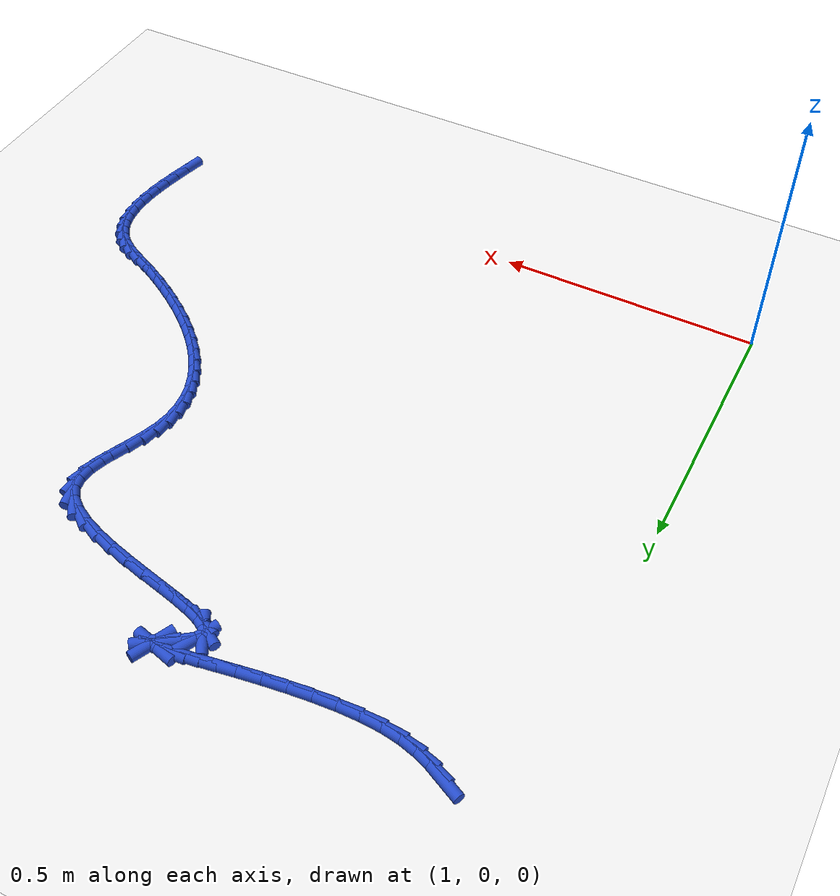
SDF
<sdf version="1.6">
 <world name="default">
  <model name="ground_plane">
   <static>1</static>
   <link name="link">
    <collision name="collision">
     <geometry><plane><normal>0 0 1</normal><size>100 100</size></plane></geometry>
     <surface><friction><ode><mu>100</mu><mu2>50</mu2></ode></friction></surface>
    </collision>
    <visual name="visual">
     <cast_shadows>0</cast_shadows>
     <geometry><plane><normal>0 0 1</normal><size>100 100</size></plane></geometry>
     <material>
      <script><uri>file://media/materials/scripts/gazebo.material</uri><name>Gazebo/WhiteGlow</name></script>
     </material>
    </visual>
   </link>
  </model>
  <model name="line">
   <link name="link_76">
    <pose>1.119557939221141 1.0573060008695208 0.01 0 1.57 -0.4448276325542376</pose>
    <collision name="collision">
     <geometry><cylinder><radius>0.01</radius><length>0.08</length></cylinder></geometry>
    </collision>
    <visual name="visual">
     <material>
      <script><name>Gazebo/Blue</name><uri>file://media/materials/scripts/gazebo.material</uri></script>
     </material>
     <geometry><cylinder><radius>0.01</radius><length>0.08</length></cylinder></geometry>
    </visual>
   </link>
   <link name="link_77">
    <pose>1.1432711441224492 1.0460021150662575 0.01 0 1.57 -0.3547478070886102</pose>
    <collision name="collision">
     <geometry><cylinder><radius>0.01</radius><length>0.08</length></cylinder></geometry>
    </collision>
    <visual name="visual">
     <material>
      <script><name>Gazebo/Blue</name><uri>file://media/materials/scripts/gazebo.material</uri></script>
     </material>
     <geometry><cylinder><radius>0.01</radius><length>0.08</length></cylinder></geometry>
    </visual>
   </link>
   <link name="link_78">
    <pose>1.1694569294703592 1.03630242074345 0.01 0 1.57 -0.2484566530718259</pose>
    <collision name="collision">
     <geometry><cylinder><radius>0.01</radius><length>0.08</length></cylinder></geometry>
    </collision>
    <visual name="visual">
     <material>
      <script><name>Gazebo/Blue</name><uri>file://media/materials/scripts/gazebo.material</uri></script>
     </material>
     <geometry><cylinder><radius>0.01</radius><length>0.08</length></cylinder></geometry>
    </visual>
   </link>
   <link name="link_79">
    <pose>1.1987830521137246 1.0288624246276619 0.01 0 1.57 -0.13606380426584513</pose>
    <collision name="collision">
     <geometry><cylinder><radius>0.01</radius><length>0.08</length></cylinder></geometry>
    </collision>
    <visual name="visual">
     <material>
      <script><name>Gazebo/Blue</name><uri>file://media/materials/scripts/gazebo.material</uri></script>
     </material>
     <geometry><cylinder><radius>0.01</radius><length>0.08</length></cylinder></geometry>
    </visual>
   </link>
   <link name="link_80">
    <pose>1.2319029323683126 1.0243279905908655 0.01 0 1.57 -0.03921163434594837</pose>
    <collision name="collision">
     <geometry><cylinder><radius>0.01</radius><length>0.08</length></cylinder></geometry>
    </collision>
    <visual name="visual">
     <material>
      <script><name>Gazebo/Blue</name><uri>file://media/materials/scripts/gazebo.material</uri></script>
     </material>
     <geometry><cylinder><radius>0.01</radius><length>0.08</length></cylinder></geometry>
    </visual>
   </link>
   <link name="link_81">
    <pose>1.2687804902889022 1.022881219702808 0.01 0 1.57 0.029356387651383205</pose>
    <collision name="collision">
     <geometry><cylinder><radius>0.01</radius><length>0.08</length></cylinder></geometry>
    </collision>
    <visual name="visual">
     <material>
      <script><name>Gazebo/Blue</name><uri>file://media/materials/scripts/gazebo.material</uri></script>
     </material>
     <geometry><cylinder><radius>0.01</radius><length>0.08</length></cylinder></geometry>
    </visual>
   </link>
   <link name="link_82">
    <pose>1.308398979292533 1.0240446096455431 0.01 0 1.57 0.07848825222287074</pose>
    <collision name="collision">
     <geometry><cylinder><radius>0.01</radius><length>0.08</length></cylinder></geometry>
    </collision>
    <visual name="visual">
     <material>
      <script><name>Gazebo/Blue</name><uri>file://media/materials/scripts/gazebo.material</uri></script>
     </material>
     <geometry><cylinder><radius>0.01</radius><length>0.08</length></cylinder></geometry>
    </visual>
   </link>
   <link name="link_83">
    <pose>1.349666808226554 1.0272903171087626 0.01 0 1.57 0.11426672199309747</pose>
    <collision name="collision">
     <geometry><cylinder><radius>0.01</radius><length>0.08</length></cylinder></geometry>
    </collision>
    <visual name="visual">
     <material>
      <script><name>Gazebo/Blue</name><uri>file://media/materials/scripts/gazebo.material</uri></script>
     </material>
     <geometry><cylinder><radius>0.01</radius><length>0.08</length></cylinder></geometry>
    </visual>
   </link>
   <link name="link_84">
    <pose>1.3914923859383148 1.0320904987821584 0.01 0 1.57 0.14018766195337773</pose>
    <collision name="collision">
     <geometry><cylinder><radius>0.01</radius><length>0.08</length></cylinder></geometry>
    </collision>
    <visual name="visual">
     <material>
      <script><name>Gazebo/Blue</name><uri>file://media/materials/scripts/gazebo.material</uri></script>
     </material>
     <geometry><cylinder><radius>0.01</radius><length>0.08</length></cylinder></geometry>
    </visual>
   </link>
   <link name="link_85">
    <pose>1.4327841212751626 1.0379173113554228 0.01 0 1.57 0.15813881793317555</pose>
    <collision name="collision">
     <geometry><cylinder><radius>0.01</radius><length>0.08</length></cylinder></geometry>
    </collision>
    <visual name="visual">
     <material>
      <script><name>Gazebo/Blue</name><uri>file://media/materials/scripts/gazebo.material</uri></script>
     </material>
     <geometry><cylinder><radius>0.01</radius><length>0.08</length></cylinder></geometry>
    </visual>
   </link>
   <link name="link_86">
    <pose>1.4724504230844488 1.0442429115182483 0.01 0 1.57 0.16878909068586265</pose>
    <collision name="collision">
     <geometry><cylinder><radius>0.01</radius><length>0.08</length></cylinder></geometry>
    </collision>
    <visual name="visual">
     <material>
      <script><name>Gazebo/Blue</name><uri>file://media/materials/scripts/gazebo.material</uri></script>
     </material>
     <geometry><cylinder><radius>0.01</radius><length>0.08</length></cylinder></geometry>
    </visual>
   </link>
   <link name="link_87">
    <pose>1.5093997002135218 1.0505394559603274 0.01 0 1.57 0.171489330829459</pose>
    <collision name="collision">
     <geometry><cylinder><radius>0.01</radius><length>0.08</length></cylinder></geometry>
    </collision>
    <visual name="visual">
     <material>
      <script><name>Gazebo/Blue</name><uri>file://media/materials/scripts/gazebo.material</uri></script>
     </material>
     <geometry><cylinder><radius>0.01</radius><length>0.08</length></cylinder></geometry>
    </visual>
   </link>
   <link name="link_88">
    <pose>1.5425403615097304 1.0562791013713517 0.01 0 1.57 0.1633621191271412</pose>
    <collision name="collision">
     <geometry><cylinder><radius>0.01</radius><length>0.08</length></cylinder></geometry>
    </collision>
    <visual name="visual">
     <material>
      <script><name>Gazebo/Blue</name><uri>file://media/materials/scripts/gazebo.material</uri></script>
     </material>
     <geometry><cylinder><radius>0.01</radius><length>0.08</length></cylinder></geometry>
    </visual>
   </link>
   <link name="link_89">
    <pose>1.5707808158204228 1.0609340044410132 0.01 0 1.57 0.13589878426018437</pose>
    <collision name="collision">
     <geometry><cylinder><radius>0.01</radius><length>0.08</length></cylinder></geometry>
    </collision>
    <visual name="visual">
     <material>
      <script><name>Gazebo/Blue</name><uri>file://media/materials/scripts/gazebo.material</uri></script>
     </material>
     <geometry><cylinder><radius>0.01</radius><length>0.08</length></cylinder></geometry>
    </visual>
   </link>
   <link name="link_90">
    <pose>1.5930294719929494 1.0639763218590046 0.01 0 1.57 0.05940069894064432</pose>
    <collision name="collision">
     <geometry><cylinder><radius>0.01</radius><length>0.08</length></cylinder></geometry>
    </collision>
    <visual name="visual">
     <material>
      <script><name>Gazebo/Blue</name><uri>file://media/materials/scripts/gazebo.material</uri></script>
     </material>
     <geometry><cylinder><radius>0.01</radius><length>0.08</length></cylinder></geometry>
    </visual>
   </link>
   <link name="link_91">
    <pose>1.6081947388746585 1.0648782103150176 0.01 0 1.57 -0.24750994195238243</pose>
    <collision name="collision">
     <geometry><cylinder><radius>0.01</radius><length>0.08</length></cylinder></geometry>
    </collision>
    <visual name="visual">
     <material>
      <script><name>Gazebo/Blue</name><uri>file://media/materials/scripts/gazebo.material</uri></script>
     </material>
     <geometry><cylinder><radius>0.01</radius><length>0.08</length></cylinder></geometry>
    </visual>
   </link>
   <link name="link_92">
    <pose>1.615185025312899 1.0631118264987451 0.01 0 1.57 1.1407332938185077</pose>
    <collision name="collision">
     <geometry><cylinder><radius>0.01</radius><length>0.08</length></cylinder></geometry>
    </collision>
    <visual name="visual">
     <material>
      <script><name>Gazebo/Blue</name><uri>file://media/materials/scripts/gazebo.material</uri></script>
     </material>
     <geometry><cylinder><radius>0.01</radius><length>0.08</length></cylinder></geometry>
    </visual>
   </link>
   <link name="link_93">
    <pose>1.6129087401550204 1.058149327099879 0.01 0 1.57 0.6023021451355605</pose>
    <collision name="collision">
     <geometry><cylinder><radius>0.01</radius><length>0.08</length></cylinder></geometry>
    </collision>
    <visual name="visual">
     <material>
      <script><name>Gazebo/Blue</name><uri>file://media/materials/scripts/gazebo.material</uri></script>
     </material>
     <geometry><cylinder><radius>0.01</radius><length>0.08</length></cylinder></geometry>
    </visual>
   </link>
   <link name="link_94">
    <pose>1.6002742922483717 1.0494628688081111 0.01 0 1.57 0.5112422622912883</pose>
    <collision name="collision">
     <geometry><cylinder><radius>0.01</radius><length>0.08</length></cylinder></geometry>
    </collision>
    <visual name="visual">
     <material>
      <script><name>Gazebo/Blue</name><uri>file://media/materials/scripts/gazebo.material</uri></script>
     </material>
     <geometry><cylinder><radius>0.01</radius><length>0.08</length></cylinder></geometry>
    </visual>
   </link>
   <link name="link_95">
    <pose>1.578068344345981 1.0370055364498645 0.01 0 1.57 0.6259605690090069</pose>
    <collision name="collision">
     <geometry><cylinder><radius>0.01</radius><length>0.08</length></cylinder></geometry>
    </collision>
    <visual name="visual">
     <material>
      <script><name>Gazebo/Blue</name><uri>file://media/materials/scripts/gazebo.material</uri></script>
     </material>
     <geometry><cylinder><radius>0.01</radius><length>0.08</length></cylinder></geometry>
    </visual>
   </link>
   <link name="link_96">
    <pose>1.5602315769598556 1.024110516141145 0.01 0 1.57 1.12702797504009</pose>
    <collision name="collision">
     <geometry><cylinder><radius>0.01</radius><length>0.08</length></cylinder></geometry>
    </collision>
    <visual name="visual">
     <material>
      <script><name>Gazebo/Blue</name><uri>file://media/materials/scripts/gazebo.material</uri></script>
     </material>
     <geometry><cylinder><radius>0.01</radius><length>0.08</length></cylinder></geometry>
    </visual>
   </link>
   <link name="link_97">
    <pose>1.5548529517734082 1.0127964384196382 0.01 0 1.57 -1.0506963284716646</pose>
    <collision name="collision">
     <geometry><cylinder><radius>0.01</radius><length>0.08</length></cylinder></geometry>
    </collision>
    <visual name="visual">
     <material>
      <script><name>Gazebo/Blue</name><uri>file://media/materials/scripts/gazebo.material</uri></script>
     </material>
     <geometry><cylinder><radius>0.01</radius><length>0.08</length></cylinder></geometry>
    </visual>
   </link>
   <link name="link_98">
    <pose>1.5605741035795373 1.002806556163056 0.01 0 1.57 -0.53347241656954</pose>
    <collision name="collision">
     <geometry><cylinder><radius>0.01</radius><length>0.08</length></cylinder></geometry>
    </collision>
    <visual name="visual">
     <material>
      <script><name>Gazebo/Blue</name><uri>file://media/materials/scripts/gazebo.material</uri></script>
     </material>
     <geometry><cylinder><radius>0.01</radius><length>0.08</length></cylinder></geometry>
    </visual>
   </link>
   <link name="link_99">
    <pose>1.5757845679919935 0.9938233922622395 0.01 0 1.57 -0.3448564510213312</pose>
    <collision name="collision">
     <geometry><cylinder><radius>0.01</radius><length>0.08</length></cylinder></geometry>
    </collision>
    <visual name="visual">
     <material>
      <script><name>Gazebo/Blue</name><uri>file://media/materials/scripts/gazebo.material</uri></script>
     </material>
     <geometry><cylinder><radius>0.01</radius><length>0.08</length></cylinder></geometry>
    </visual>
   </link>
   <link name="link_100">
    <pose>1.5988738806245244 0.9855294696080285 0.01 0 1.57 -0.2635715171581678</pose>
    <collision name="collision">
     <geometry><cylinder><radius>0.01</radius><length>0.08</length></cylinder></geometry>
    </collision>
    <visual name="visual">
     <material>
      <script><name>Gazebo/Blue</name><uri>file://media/materials/scripts/gazebo.material</uri></script>
     </material>
     <geometry><cylinder><radius>0.01</radius><length>0.08</length></cylinder></geometry>
    </visual>
   </link>
   <link name="link_101">
    <pose>1.6282315770908804 0.977607311091264 0.01 0 1.57 -0.22730438313556744</pose>
    <collision name="collision">
     <geometry><cylinder><radius>0.01</radius><length>0.08</length></cylinder></geometry>
    </collision>
    <visual name="visual">
     <material>
      <script><name>Gazebo/Blue</name><uri>file://media/materials/scripts/gazebo.material</uri></script>
     </material>
     <geometry><cylinder><radius>0.01</radius><length>0.08</length></cylinder></geometry>
    </visual>
   </link>
   <link name="link_102">
    <pose>1.6622471930048102 0.9697394396027855 0.01 0 1.57 -0.21596309971902802</pose>
    <collision name="collision">
     <geometry><cylinder><radius>0.01</radius><length>0.08</length></cylinder></geometry>
    </collision>
    <visual name="visual">
     <material>
      <script><name>Gazebo/Blue</name><uri>file://media/materials/scripts/gazebo.material</uri></script>
     </material>
     <geometry><cylinder><radius>0.01</radius><length>0.08</length></cylinder></geometry>
    </visual>
   </link>
   <link name="link_103">
    <pose>1.699310263980063 0.9616083780334334 0.01 0 1.57 -0.22253081950443354</pose>
    <collision name="collision">
     <geometry><cylinder><radius>0.01</radius><length>0.08</length></cylinder></geometry>
    </collision>
    <visual name="visual">
     <material>
      <script><name>Gazebo/Blue</name><uri>file://media/materials/scripts/gazebo.material</uri></script>
     </material>
     <geometry><cylinder><radius>0.01</radius><length>0.08</length></cylinder></geometry>
    </visual>
   </link>
   <link name="link_104">
    <pose>1.7378103256303883 0.952896649274049 0.01 0 1.57 -0.24567168358701957</pose>
    <collision name="collision">
     <geometry><cylinder><radius>0.01</radius><length>0.08</length></cylinder></geometry>
    </collision>
    <visual name="visual">
     <material>
      <script><name>Gazebo/Blue</name><uri>file://media/materials/scripts/gazebo.material</uri></script>
     </material>
     <geometry><cylinder><radius>0.01</radius><length>0.08</length></cylinder></geometry>
    </visual>
   </link>
   <link name="link_105">
    <pose>1.7761369135695342 0.9432867762154717 0.01 0 1.57 -0.28800620609494315</pose>
    <collision name="collision">
     <geometry><cylinder><radius>0.01</radius><length>0.08</length></cylinder></geometry>
    </collision>
    <visual name="visual">
     <material>
      <script><name>Gazebo/Blue</name><uri>file://media/materials/scripts/gazebo.material</uri></script>
     </material>
     <geometry><cylinder><radius>0.01</radius><length>0.08</length></cylinder></geometry>
    </visual>
   </link>
   <link name="link_106">
    <pose>1.8126795634112502 0.932461281748542 0.01 0 1.57 -0.35686504547201786</pose>
    <collision name="collision">
     <geometry><cylinder><radius>0.01</radius><length>0.08</length></cylinder></geometry>
    </collision>
    <visual name="visual">
     <material>
      <script><name>Gazebo/Blue</name><uri>file://media/materials/scripts/gazebo.material</uri></script>
     </material>
     <geometry><cylinder><radius>0.01</radius><length>0.08</length></cylinder></geometry>
    </visual>
   </link>
   <link name="link_107">
    <pose>1.8458278107692867 0.9201026887641008 0.01 0 1.57 -0.4675479099328642</pose>
    <collision name="collision">
     <geometry><cylinder><radius>0.01</radius><length>0.08</length></cylinder></geometry>
    </collision>
    <visual name="visual">
     <material>
      <script><name>Gazebo/Blue</name><uri>file://media/materials/scripts/gazebo.material</uri></script>
     </material>
     <geometry><cylinder><radius>0.01</radius><length>0.08</length></cylinder></geometry>
    </visual>
   </link>
   <link name="link_108">
    <pose>1.8739711912573898 0.9058935201529879 0.01 0 1.57 -0.6503385598585086</pose>
    <collision name="collision">
     <geometry><cylinder><radius>0.01</radius><length>0.08</length></cylinder></geometry>
    </collision>
    <visual name="visual">
     <material>
      <script><name>Gazebo/Blue</name><uri>file://media/materials/scripts/gazebo.material</uri></script>
     </material>
     <geometry><cylinder><radius>0.01</radius><length>0.08</length></cylinder></geometry>
    </visual>
   </link>
   <link name="link_109">
    <pose>1.8954992404893116 0.8895162988060434 0.01 0 1.57 -0.9557627194883163</pose>
    <collision name="collision">
     <geometry><cylinder><radius>0.01</radius><length>0.08</length></cylinder></geometry>
    </collision>
    <visual name="visual">
     <material>
      <script><name>Gazebo/Blue</name><uri>file://media/materials/scripts/gazebo.material</uri></script>
     </material>
     <geometry><cylinder><radius>0.01</radius><length>0.08</length></cylinder></geometry>
    </visual>
   </link>
   <link name="link_110">
    <pose>1.9088214632244878 0.8706579902914012 0.01 0 1.57 -1.3505530170095883</pose>
    <collision name="collision">
     <geometry><cylinder><radius>0.01</radius><length>0.08</length></cylinder></geometry>
    </collision>
    <visual name="visual">
     <material>
      <script><name>Gazebo/Blue</name><uri>file://media/materials/scripts/gazebo.material</uri></script>
     </material>
     <geometry><cylinder><radius>0.01</radius><length>0.08</length></cylinder></geometry>
    </visual>
   </link>
   <link name="link_111">
    <pose>1.913606200220681 0.8492856223387311 0.01 0 1.57 1.4816917842678161</pose>
    <collision name="collision">
     <geometry><cylinder><radius>0.01</radius><length>0.08</length></cylinder></geometry>
    </collision>
    <visual name="visual">
     <material>
      <script><name>Gazebo/Blue</name><uri>file://media/materials/scripts/gazebo.material</uri></script>
     </material>
     <geometry><cylinder><radius>0.01</radius><length>0.08</length></cylinder></geometry>
    </visual>
   </link>
   <link name="link_112">
    <pose>1.9115087070572958 0.8258082656924232 0.01 0 1.57 1.293671328081895</pose>
    <collision name="collision">
     <geometry><cylinder><radius>0.01</radius><length>0.08</length></cylinder></geometry>
    </collision>
    <visual name="visual">
     <material>
      <script><name>Gazebo/Blue</name><uri>file://media/materials/scripts/gazebo.material</uri></script>
     </material>
     <geometry><cylinder><radius>0.01</radius><length>0.08</length></cylinder></geometry>
    </visual>
   </link>
   <link name="link_113">
    <pose>1.9043594007161724 0.8006739604948265 0.01 0 1.57 1.1957531534497035</pose>
    <collision name="collision">
     <geometry><cylinder><radius>0.01</radius><length>0.08</length></cylinder></geometry>
    </collision>
    <visual name="visual">
     <material>
      <script><name>Gazebo/Blue</name><uri>file://media/materials/scripts/gazebo.material</uri></script>
     </material>
     <geometry><cylinder><radius>0.01</radius><length>0.08</length></cylinder></geometry>
    </visual>
   </link>
   <link name="link_114">
    <pose>1.8939886981791545 0.7743307468882914 0.01 0 1.57 1.1613736162537311</pose>
    <collision name="collision">
     <geometry><cylinder><radius>0.01</radius><length>0.08</length></cylinder></geometry>
    </collision>
    <visual name="visual">
     <material>
      <script><name>Gazebo/Blue</name><uri>file://media/materials/scripts/gazebo.material</uri></script>
     </material>
     <geometry><cylinder><radius>0.01</radius><length>0.08</length></cylinder></geometry>
    </visual>
   </link>
   <link name="link_115">
    <pose>1.8822270164280839 0.7472266650151675 0.01 0 1.57 1.1791628147000566</pose>
    <collision name="collision">
     <geometry><cylinder><radius>0.01</radius><length>0.08</length></cylinder></geometry>
    </collision>
    <visual name="visual">
     <material>
      <script><name>Gazebo/Blue</name><uri>file://media/materials/scripts/gazebo.material</uri></script>
     </material>
     <geometry><cylinder><radius>0.01</radius><length>0.08</length></cylinder></geometry>
    </visual>
   </link>
   <link name="link_116">
    <pose>1.8709047724448016 0.7198097550178041 0.01 0 1.57 1.2504157795320505</pose>
    <collision name="collision">
     <geometry><cylinder><radius>0.01</radius><length>0.08</length></cylinder></geometry>
    </collision>
    <visual name="visual">
     <material>
      <script><name>Gazebo/Blue</name><uri>file://media/materials/scripts/gazebo.material</uri></script>
     </material>
     <geometry><cylinder><radius>0.01</radius><length>0.08</length></cylinder></geometry>
    </visual>
   </link>
   <link name="link_117">
    <pose>1.8618523832111507 0.6925280570385512 0.01 0 1.57 1.379815402303103</pose>
    <collision name="collision">
     <geometry><cylinder><radius>0.01</radius><length>0.08</length></cylinder></geometry>
    </collision>
    <visual name="visual">
     <material>
      <script><name>Gazebo/Blue</name><uri>file://media/materials/scripts/gazebo.material</uri></script>
     </material>
     <geometry><cylinder><radius>0.01</radius><length>0.08</length></cylinder></geometry>
    </visual>
   </link>
   <link name="link_118">
    <pose>1.8566822393642997 0.6657864734600046 0.01 0 1.57 1.5306269816616056</pose>
    <collision name="collision">
     <geometry><cylinder><radius>0.01</radius><length>0.08</length></cylinder></geometry>
    </collision>
    <visual name="visual">
     <material>
      <script><name>Gazebo/Blue</name><uri>file://media/materials/scripts/gazebo.material</uri></script>
     </material>
     <geometry><cylinder><radius>0.01</radius><length>0.08</length></cylinder></geometry>
    </visual>
   </link>
   <link name="link_119">
    <pose>1.8556345387696744 0.639718410473731 0.01 0 1.57 -1.461543438816639</pose>
    <collision name="collision">
     <geometry><cylinder><radius>0.01</radius><length>0.08</length></cylinder></geometry>
    </collision>
    <visual name="visual">
     <material>
      <script><name>Gazebo/Blue</name><uri>file://media/materials/scripts/gazebo.material</uri></script>
     </material>
     <geometry><cylinder><radius>0.01</radius><length>0.08</length></cylinder></geometry>
    </visual>
   </link>
   <link name="link_120">
    <pose>1.858416980911648 0.6143519164198622 0.01 0 1.57 -1.3197212078582248</pose>
    <collision name="collision">
     <geometry><cylinder><radius>0.01</radius><length>0.08</length></cylinder></geometry>
    </collision>
    <visual name="visual">
     <material>
      <script><name>Gazebo/Blue</name><uri>file://media/materials/scripts/gazebo.material</uri></script>
     </material>
     <geometry><cylinder><radius>0.01</radius><length>0.08</length></cylinder></geometry>
    </visual>
   </link>
   <link name="link_121">
    <pose>1.8647360902968033 0.5897148071624511 0.01 0 1.57 -1.1899168127228186</pose>
    <collision name="collision">
     <geometry><cylinder><radius>0.01</radius><length>0.08</length></cylinder></geometry>
    </collision>
    <visual name="visual">
     <material>
      <script><name>Gazebo/Blue</name><uri>file://media/materials/scripts/gazebo.material</uri></script>
     </material>
     <geometry><cylinder><radius>0.01</radius><length>0.08</length></cylinder></geometry>
    </visual>
   </link>
   <link name="link_122">
    <pose>1.8742983914317244 0.5658348985655514 0.01 0 1.57 -1.0742971082232666</pose>
    <collision name="collision">
     <geometry><cylinder><radius>0.01</radius><length>0.08</length></cylinder></geometry>
    </collision>
    <visual name="visual">
     <material>
      <script><name>Gazebo/Blue</name><uri>file://media/materials/scripts/gazebo.material</uri></script>
     </material>
     <geometry><cylinder><radius>0.01</radius><length>0.08</length></cylinder></geometry>
    </visual>
   </link>
   <link name="link_123">
    <pose>1.8868104088229942 0.5427400064932161 0.01 0 1.57 -0.9731147807423908</pose>
    <collision name="collision">
     <geometry><cylinder><radius>0.01</radius><length>0.08</length></cylinder></geometry>
    </collision>
    <visual name="visual">
     <material>
      <script><name>Gazebo/Blue</name><uri>file://media/materials/scripts/gazebo.material</uri></script>
     </material>
     <geometry><cylinder><radius>0.01</radius><length>0.08</length></cylinder></geometry>
    </visual>
   </link>
   <link name="link_124">
    <pose>1.901978666977196 0.5204579468094989 0.01 0 1.57 -0.8854007427539055</pose>
    <collision name="collision">
     <geometry><cylinder><radius>0.01</radius><length>0.08</length></cylinder></geometry>
    </collision>
    <visual name="visual">
     <material>
      <script><name>Gazebo/Blue</name><uri>file://media/materials/scripts/gazebo.material</uri></script>
     </material>
     <geometry><cylinder><radius>0.01</radius><length>0.08</length></cylinder></geometry>
    </visual>
   </link>
   <link name="link_125">
    <pose>1.919509690400913 0.4990165353784521 0.01 0 1.57 -0.80960441714306</pose>
    <collision name="collision">
     <geometry><cylinder><radius>0.01</radius><length>0.08</length></cylinder></geometry>
    </collision>
    <visual name="visual">
     <material>
      <script><name>Gazebo/Blue</name><uri>file://media/materials/scripts/gazebo.material</uri></script>
     </material>
     <geometry><cylinder><radius>0.01</radius><length>0.08</length></cylinder></geometry>
    </visual>
   </link>
   <link name="link_126">
    <pose>1.9391100036007278 0.47844358806412934 0.01 0 1.57 -0.7440248449324799</pose>
    <collision name="collision">
     <geometry><cylinder><radius>0.01</radius><length>0.08</length></cylinder></geometry>
    </collision>
    <visual name="visual">
     <material>
      <script><name>Gazebo/Blue</name><uri>file://media/materials/scripts/gazebo.material</uri></script>
     </material>
     <geometry><cylinder><radius>0.01</radius><length>0.08</length></cylinder></geometry>
    </visual>
   </link>
   <link name="link_127">
    <pose>1.9604861310832251 0.458766920730584 0.01 0 1.57 -0.687043333451057</pose>
    <collision name="collision">
     <geometry><cylinder><radius>0.01</radius><length>0.08</length></cylinder></geometry>
    </collision>
    <visual name="visual">
     <material>
      <script><name>Gazebo/Blue</name><uri>file://media/materials/scripts/gazebo.material</uri></script>
     </material>
     <geometry><cylinder><radius>0.01</radius><length>0.08</length></cylinder></geometry>
    </visual>
   </link>
   <link name="link_128">
    <pose>1.9833445973549872 0.44001434924186933 0.01 0 1.57 -0.6372217512892553</pose>
    <collision name="collision">
     <geometry><cylinder><radius>0.01</radius><length>0.08</length></cylinder></geometry>
    </collision>
    <visual name="visual">
     <material>
      <script><name>Gazebo/Blue</name><uri>file://media/materials/scripts/gazebo.material</uri></script>
     </material>
     <geometry><cylinder><radius>0.01</radius><length>0.08</length></cylinder></geometry>
    </visual>
   </link>
   <link name="link_129">
    <pose>2.007391926922597 0.42221368946203824 0.01 0 1.57 -0.5933253318608208</pose>
    <collision name="collision">
     <geometry><cylinder><radius>0.01</radius><length>0.08</length></cylinder></geometry>
    </collision>
    <visual name="visual">
     <material>
      <script><name>Gazebo/Blue</name><uri>file://media/materials/scripts/gazebo.material</uri></script>
     </material>
     <geometry><cylinder><radius>0.01</radius><length>0.08</length></cylinder></geometry>
    </visual>
   </link>
   <link name="link_130">
    <pose>2.032334644292639 0.40539275725514423 0.01 0 1.57 -0.5543088146993601</pose>
    <collision name="collision">
     <geometry><cylinder><radius>0.01</radius><length>0.08</length></cylinder></geometry>
    </collision>
    <visual name="visual">
     <material>
      <script><name>Gazebo/Blue</name><uri>file://media/materials/scripts/gazebo.material</uri></script>
     </material>
     <geometry><cylinder><radius>0.01</radius><length>0.08</length></cylinder></geometry>
    </visual>
   </link>
   <link name="link_131">
    <pose>2.0578792739716953 0.38957936848524055 0.01 0 1.57 -0.5192874829428267</pose>
    <collision name="collision">
     <geometry><cylinder><radius>0.01</radius><length>0.08</length></cylinder></geometry>
    </collision>
    <visual name="visual">
     <material>
      <script><name>Gazebo/Blue</name><uri>file://media/materials/scripts/gazebo.material</uri></script>
     </material>
     <geometry><cylinder><radius>0.01</radius><length>0.08</length></cylinder></geometry>
    </visual>
   </link>
   <link name="link_132">
    <pose>2.0837323404663493 0.37480133901638024 0.01 0 1.57 -0.4875034198710761</pose>
    <collision name="collision">
     <geometry><cylinder><radius>0.01</radius><length>0.08</length></cylinder></geometry>
    </collision>
    <visual name="visual">
     <material>
      <script><name>Gazebo/Blue</name><uri>file://media/materials/scripts/gazebo.material</uri></script>
     </material>
     <geometry><cylinder><radius>0.01</radius><length>0.08</length></cylinder></geometry>
    </visual>
   </link>
   <link name="link_133">
    <pose>2.1096003682831848 0.36108648471261695 0.01 0 1.57 -0.45829073842612533</pose>
    <collision name="collision">
     <geometry><cylinder><radius>0.01</radius><length>0.08</length></cylinder></geometry>
    </collision>
    <visual name="visual">
     <material>
      <script><name>Gazebo/Blue</name><uri>file://media/materials/scripts/gazebo.material</uri></script>
     </material>
     <geometry><cylinder><radius>0.01</radius><length>0.08</length></cylinder></geometry>
    </visual>
   </link>
   <link name="link_134">
    <pose>2.1351898819287847 0.3484626214380032 0.01 0 1.57 -0.43873058203203</pose>
    <collision name="collision">
     <geometry><cylinder><radius>0.01</radius><length>0.08</length></cylinder></geometry>
    </collision>
    <visual name="visual">
     <material>
      <script><name>Gazebo/Blue</name><uri>file://media/materials/scripts/gazebo.material</uri></script>
     </material>
     <geometry><cylinder><radius>0.01</radius><length>0.08</length></cylinder></geometry>
    </visual>
   </link>
   <link name="link_135">
    <pose>2.160075280123981 0.33678562891875874 0.01 0 1.57 -0.46897960750838685</pose>
    <collision name="collision">
     <geometry><cylinder><radius>0.01</radius><length>0.08</length></cylinder></geometry>
    </collision>
    <visual name="visual">
     <material>
      <script><name>Gazebo/Blue</name><uri>file://media/materials/scripts/gazebo.material</uri></script>
     </material>
     <geometry><cylinder><radius>0.01</radius><length>0.08</length></cylinder></geometry>
    </visual>
   </link>
   <link name="link_136">
    <pose>2.183188062322729 0.3250747779153801 0.01 0 1.57 -0.5737135952614079</pose>
    <collision name="collision">
     <geometry><cylinder><radius>0.01</radius><length>0.08</length></cylinder></geometry>
    </collision>
    <visual name="visual">
     <material>
      <script><name>Gazebo/Blue</name><uri>file://media/materials/scripts/gazebo.material</uri></script>
     </material>
     <geometry><cylinder><radius>0.01</radius><length>0.08</length></cylinder></geometry>
    </visual>
   </link>
   <link name="link_137">
    <pose>2.2032682431344806 0.31209855608130505 0.01 0 1.57 -0.7462517509697734</pose>
    <collision name="collision">
     <geometry><cylinder><radius>0.01</radius><length>0.08</length></cylinder></geometry>
    </collision>
    <visual name="visual">
     <material>
      <script><name>Gazebo/Blue</name><uri>file://media/materials/scripts/gazebo.material</uri></script>
     </material>
     <geometry><cylinder><radius>0.01</radius><length>0.08</length></cylinder></geometry>
    </visual>
   </link>
   <link name="link_138">
    <pose>2.219542017520229 0.29705150628839166 0.01 0 1.57 -0.9331875382493986</pose>
    <collision name="collision">
     <geometry><cylinder><radius>0.01</radius><length>0.08</length></cylinder></geometry>
    </collision>
    <visual name="visual">
     <material>
      <script><name>Gazebo/Blue</name><uri>file://media/materials/scripts/gazebo.material</uri></script>
     </material>
     <geometry><cylinder><radius>0.01</radius><length>0.08</length></cylinder></geometry>
    </visual>
   </link>
   <link name="link_139">
    <pose>2.2321964120864117 0.27997021612961165 0.01 0 1.57 -1.113715864325099</pose>
    <collision name="collision">
     <geometry><cylinder><radius>0.01</radius><length>0.08</length></cylinder></geometry>
    </collision>
    <visual name="visual">
     <material>
      <script><name>Gazebo/Blue</name><uri>file://media/materials/scripts/gazebo.material</uri></script>
     </material>
     <geometry><cylinder><radius>0.01</radius><length>0.08</length></cylinder></geometry>
    </visual>
   </link>
   <link name="link_140">
    <pose>2.2415311865145404 0.2609900691641356 0.01 0 1.57 -1.2752832101543916</pose>
    <collision name="collision">
     <geometry><cylinder><radius>0.01</radius><length>0.08</length></cylinder></geometry>
    </collision>
    <visual name="visual">
     <material>
      <script><name>Gazebo/Blue</name><uri>file://media/materials/scripts/gazebo.material</uri></script>
     </material>
     <geometry><cylinder><radius>0.01</radius><length>0.08</length></cylinder></geometry>
    </visual>
   </link>
   <link name="link_141">
    <pose>2.2478461004861323 0.24024644895113303 0.01 0 1.57 -1.4114725811346165</pose>
    <collision name="collision">
     <geometry><cylinder><radius>0.01</radius><length>0.08</length></cylinder></geometry>
    </collision>
    <visual name="visual">
     <material>
      <script><name>Gazebo/Blue</name><uri>file://media/materials/scripts/gazebo.material</uri></script>
     </material>
     <geometry><cylinder><radius>0.01</radius><length>0.08</length></cylinder></geometry>
    </visual>
   </link>
   <link name="link_142">
    <pose>2.2514409136827003 0.21787473904977442 0.01 0 1.57 -1.5216216365111228</pose>
    <collision name="collision">
     <geometry><cylinder><radius>0.01</radius><length>0.08</length></cylinder></geometry>
    </collision>
    <visual name="visual">
     <material>
      <script><name>Gazebo/Blue</name><uri>file://media/materials/scripts/gazebo.material</uri></script>
     </material>
     <geometry><cylinder><radius>0.01</radius><length>0.08</length></cylinder></geometry>
    </visual>
   </link>
   <link name="link_143">
    <pose>2.2526153857857585 0.19401032301922988 0.01 0 1.57 1.5333022454549852</pose>
    <collision name="collision">
     <geometry><cylinder><radius>0.01</radius><length>0.08</length></cylinder></geometry>
    </collision>
    <visual name="visual">
     <material>
      <script><name>Gazebo/Blue</name><uri>file://media/materials/scripts/gazebo.material</uri></script>
     </material>
     <geometry><cylinder><radius>0.01</radius><length>0.08</length></cylinder></geometry>
    </visual>
   </link>
   <link name="link_144">
    <pose>2.2516692764768216 0.16878858441866967 0.01 0 1.57 1.4665408210734274</pose>
    <collision name="collision">
     <geometry><cylinder><radius>0.01</radius><length>0.08</length></cylinder></geometry>
    </collision>
    <visual name="visual">
     <material>
      <script><name>Gazebo/Blue</name><uri>file://media/materials/scripts/gazebo.material</uri></script>
     </material>
     <geometry><cylinder><radius>0.01</radius><length>0.08</length></cylinder></geometry>
    </visual>
   </link>
   <link name="link_145">
    <pose>2.2489023454374037 0.14234490680726403 0.01 0 1.57 1.4162820570248815</pose>
    <collision name="collision">
     <geometry><cylinder><radius>0.01</radius><length>0.08</length></cylinder></geometry>
    </collision>
    <visual name="visual">
     <material>
      <script><name>Gazebo/Blue</name><uri>file://media/materials/scripts/gazebo.material</uri></script>
     </material>
     <geometry><cylinder><radius>0.01</radius><length>0.08</length></cylinder></geometry>
    </visual>
   </link>
   <link name="link_146">
    <pose>2.244614352349019 0.11481467374418304 0.01 0 1.57 1.3797213353914703</pose>
    <collision name="collision">
     <geometry><cylinder><radius>0.01</radius><length>0.08</length></cylinder></geometry>
    </collision>
    <visual name="visual">
     <material>
      <script><name>Gazebo/Blue</name><uri>file://media/materials/scripts/gazebo.material</uri></script>
     </material>
     <geometry><cylinder><radius>0.01</radius><length>0.08</length></cylinder></geometry>
    </visual>
   </link>
   <link name="link_147">
    <pose>2.239105056893184 0.08633326878859693 0.01 0 1.57 1.354719595381952</pose>
    <collision name="collision">
     <geometry><cylinder><radius>0.01</radius><length>0.08</length></cylinder></geometry>
    </collision>
    <visual name="visual">
     <material>
      <script><name>Gazebo/Blue</name><uri>file://media/materials/scripts/gazebo.material</uri></script>
     </material>
     <geometry><cylinder><radius>0.01</radius><length>0.08</length></cylinder></geometry>
    </visual>
   </link>
   <link name="link_148">
    <pose>2.2326742187514097 0.05703607549967588 0.01 0 1.57 1.339735097855022</pose>
    <collision name="collision">
     <geometry><cylinder><radius>0.01</radius><length>0.08</length></cylinder></geometry>
    </collision>
    <visual name="visual">
     <material>
      <script><name>Gazebo/Blue</name><uri>file://media/materials/scripts/gazebo.material</uri></script>
     </material>
     <geometry><cylinder><radius>0.01</radius><length>0.08</length></cylinder></geometry>
    </visual>
   </link>
  </model>
 </world>
</sdf>
